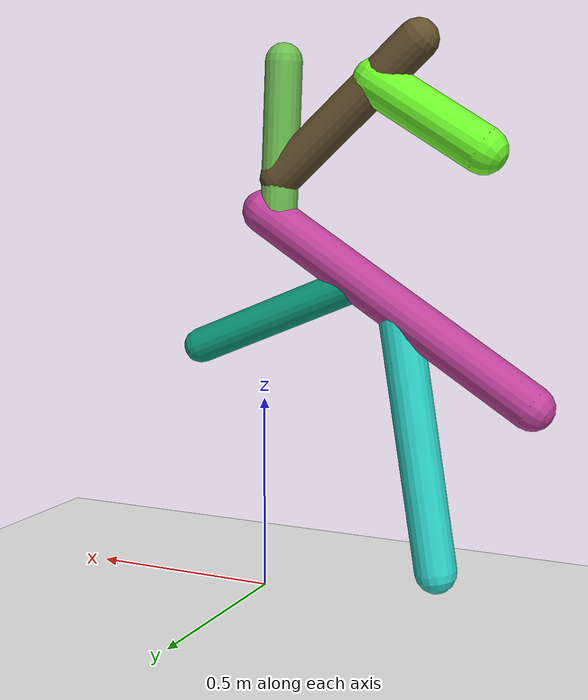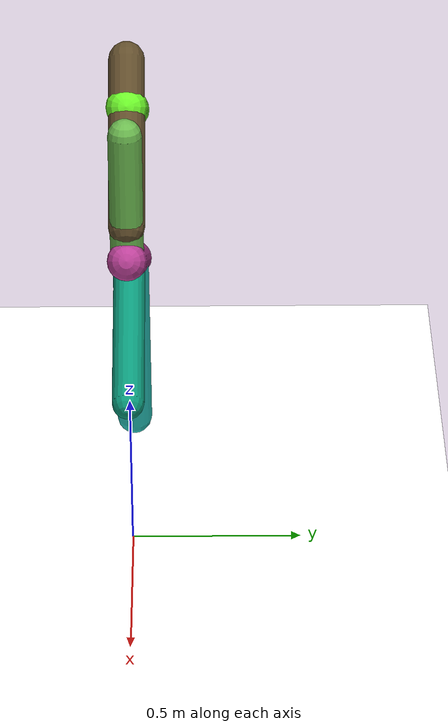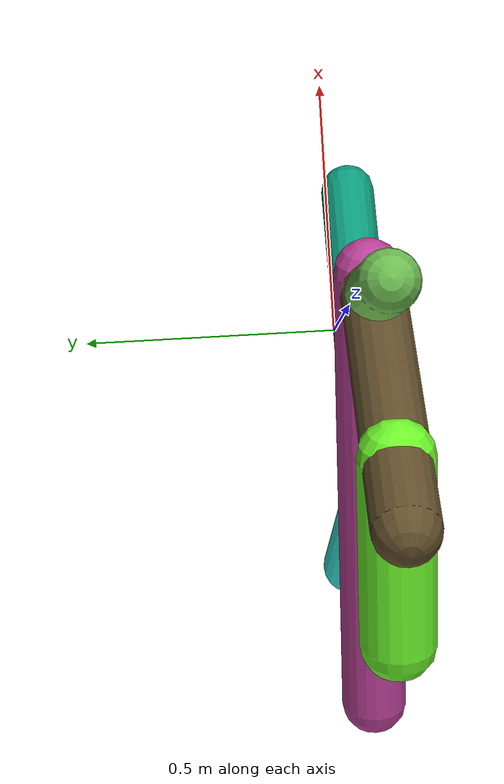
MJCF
<mujoco model="morphology">
  <option timestep="0.01"/>
  <default>
    <default class="/"/>
    <default class="0/"/>
    <default class="0/1/"/>
    <default class="0/2/"/>
    <default class="0/3/"/>
    <default class="0/3/4/"/>
    <default class="0/3/4/5/"/>
  </default>
  <asset>
    <texture name="texplane" type="2d" builtin="checker" rgb1="0.10000000000000001 0.20000000000000001 0.29999999999999999" rgb2="0.20000000000000001 0.29999999999999999 0.40000000000000002" width="300" height="300"/>
    <material name="MatPlane" class="/" texture="texplane" texrepeat="20 20" specular="1" shininess="1" reflectance="0.5"/>
  </asset>
  <worldbody>
    <light name="//unnamed_light_0" class="/" directional="true" pos="0 0 1.5" dir="0 0 -1.3" cutoff="100" exponent="1" diffuse="1 1 1" specular="0.10000000000000001 0.10000000000000001 0.10000000000000001"/>
    <geom name="ground" class="/" type="plane" size="15 15 0.5" material="MatPlane" rgba="1 1 1 1"/>
    <site name="body" class="/" size="9.9999999999999995e-07 9.9999999999999995e-07 9.9999999999999995e-07" pos="0 0 0.98372278213500974"/>
    <body pos="0 0 0.98372278213500974" name="0/">
      <joint name="0/rootx/" class="/" type="slide" axis="1 0 0" limited="false" stiffness="0" armature="0" damping="0"/>
      <joint name="0/rootz/" class="/" type="slide" axis="0 0 1" limited="false" stiffness="0" armature="0" damping="0"/>
      <joint name="0/rooty/" class="/" type="hinge" axis="0 1 0" limited="false" stiffness="0" armature="0" damping="0"/>
      <geom name="0/geom" class="0/" type="capsule" contype="1" conaffinity="1" condim="3" size="0.05580619348081349" rgba="0.7329735670873293 0.25060206681030062 0.59566570182899792 1" friction="0.59999999999999998 0.10000000000000001 0.10000000000000001" fromto="0 0 0 -0.70476174410990522 0 -0.45156293807983722"/>
      <site name="0/end0" class="0/" size="0.0050000000000000001" pos="-0.70476174410990522 0 -0.45156293807983722"/>
      <site name="0/attach1" class="0/" size="9.9999999999999995e-07 9.9999999999999995e-07 9.9999999999999995e-07" pos="-0.26381506099728941 0 -0.16903457806737832"/>
      <body pos="-0.26381506099728941 0 -0.16903457806737832" name="0/1/">
        <joint name="0/1/joint/" class="0/" type="hinge" axis="0 1 0" limited="true" range="-33.318977603484058 33.318977603484058"/>
        <geom name="0/1/geom" class="0/1/" type="capsule" contype="1" conaffinity="1" condim="3" size="0.045651131998109939" rgba="0.040502510808931413 0.6021484499061428 0.48271222750192988 1" friction="0.59999999999999998 0.10000000000000001 0.10000000000000001" fromto="0 0 0 0.45001626459820887 0 -0.18608964157482222"/>
        <site name="0/1/end1" class="0/1/" size="0.0050000000000000001" pos="0.45001626459820887 0 -0.18608964157482222"/>
      </body>
      <site name="0/attach2" class="0/" size="9.9999999999999995e-07 9.9999999999999995e-07 9.9999999999999995e-07" pos="-0.36809816624446251 0 -0.23585203203826072"/>
      <body pos="-0.36809816624446251 0 -0.23585203203826072" name="0/2/">
        <geom name="0/2/geom" class="0/2/" type="capsule" contype="1" conaffinity="1" condim="3" size="0.053258529113423304" rgba="0.17478067208334946 0.82282055073504279 0.7844415554906472 1" friction="0.59999999999999998 0.10000000000000001 0.10000000000000001" fromto="0 0 0 -0.10402230668320156 0 -0.64787074355247531"/>
        <site name="0/2/end2" class="0/2/" size="0.0050000000000000001" pos="-0.10402230668320156 0 -0.64787074355247531"/>
      </body>
      <site name="0/attach3" class="0/" size="9.9999999999999995e-07 9.9999999999999995e-07 9.9999999999999995e-07" pos="-0.040487065157522727 0 -0.025941331591218836"/>
      <body pos="-0.040487065157522727 0 -0.025941331591218836" name="0/3/">
        <joint name="0/3/joint/" class="0/" type="hinge" axis="0 1 0" limited="true" range="-31.806689317568715 31.806689317568715"/>
        <geom name="0/3/geom" class="0/3/" type="capsule" contype="1" conaffinity="1" condim="3" size="0.047337616152756397" rgba="0.42317715334486561 0.7290948854911542 0.31313228079236188 1" friction="0.59999999999999998 0.10000000000000001 0.10000000000000001" fromto="0 0 0 -0.015829021104394325 0 0.39927475848184768"/>
        <site name="0/3/end3" class="0/3/" size="0.0050000000000000001" pos="-0.015829021104394325 0 0.39927475848184768"/>
        <site name="0/3/attach4" class="0/3/" size="9.9999999999999995e-07 9.9999999999999995e-07 9.9999999999999995e-07" pos="-0.0043916305601892905 0 0.11077546865954313"/>
        <body pos="-0.0043916305601892905 0 0.11077546865954313" name="0/3/4/">
          <joint name="0/3/4/joint/" class="0/3/" type="hinge" axis="0 1 0" limited="true" range="-53.287839872393945 53.287839872393945"/>
          <geom name="0/3/4/geom" class="0/3/4/" type="capsule" contype="1" conaffinity="1" condim="3" size="0.051677152175647327" rgba="0.38669268681266611 0.30815626939847407 0.17428436620832521 1" friction="0.59999999999999998 0.10000000000000001 0.10000000000000001" fromto="0 0 0 -0.36460015200172452 0 0.32888487635334762"/>
          <site name="0/3/4/end4" class="0/3/4/" size="0.0050000000000000001" pos="-0.36460015200172452 0 0.32888487635334762"/>
          <site name="0/3/4/attach5" class="0/3/4/" size="9.9999999999999995e-07 9.9999999999999995e-07 9.9999999999999995e-07" pos="-0.25929490979903203 0 0.23389505978018274"/>
          <body pos="-0.25929490979903203 0 0.23389505978018274" name="0/3/4/5/">
            <joint name="0/3/4/5/joint/" class="0/3/4/" type="hinge" axis="0 1 0" limited="true" range="-31.036922392723049 31.036922392723049"/>
            <geom name="0/3/4/5/geom" class="0/3/4/5/" type="capsule" contype="1" conaffinity="1" condim="3" size="0.058879155517462124" rgba="0.42933518504315105 0.97741847398613657 0.16301975619512798 1" friction="0.59999999999999998 0.10000000000000001 0.10000000000000001" fromto="0 0 0 -0.27141243453966285 0 -0.16638637689502467"/>
            <site name="0/3/4/5/end5" class="0/3/4/5/" size="0.0050000000000000001" pos="-0.27141243453966285 0 -0.16638637689502467"/>
          </body>
        </body>
      </body>
      <camera name="0/side" class="0/" mode="trackcom" pos="0.40000000000000002 -4 0.20000000000000001" quat="0.70699999999999996 0.70699999999999996 0 0"/>
    </body>
  </worldbody>
  <actuator>
    <motor name="0/1/motor" class="0/1/" ctrllimited="true" ctrlrange="-1 1" gear="70" joint="0/1/joint/"/>
    <motor name="0/3/motor" class="0/3/" ctrllimited="true" ctrlrange="-1 1" gear="85" joint="0/3/joint/"/>
    <motor name="0/3/4/motor" class="0/3/4/" ctrllimited="true" ctrlrange="-1 1" gear="72" joint="0/3/4/joint/"/>
    <motor name="0/3/4/5/motor" class="0/3/4/5/" ctrllimited="true" ctrlrange="-1 1" gear="65" joint="0/3/4/5/joint/"/>
  </actuator>
  <sensor>
    <subtreelinvel name="velocity" body="0/"/>
  </sensor>
</mujoco>
